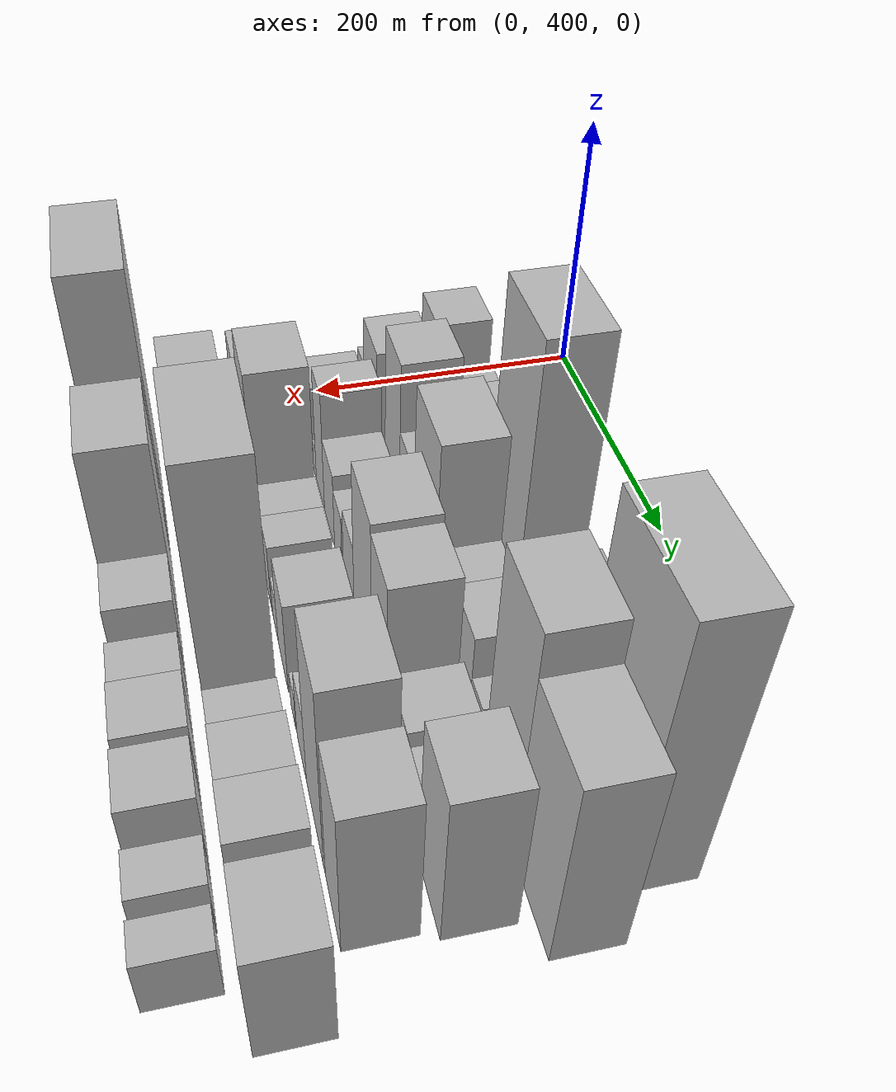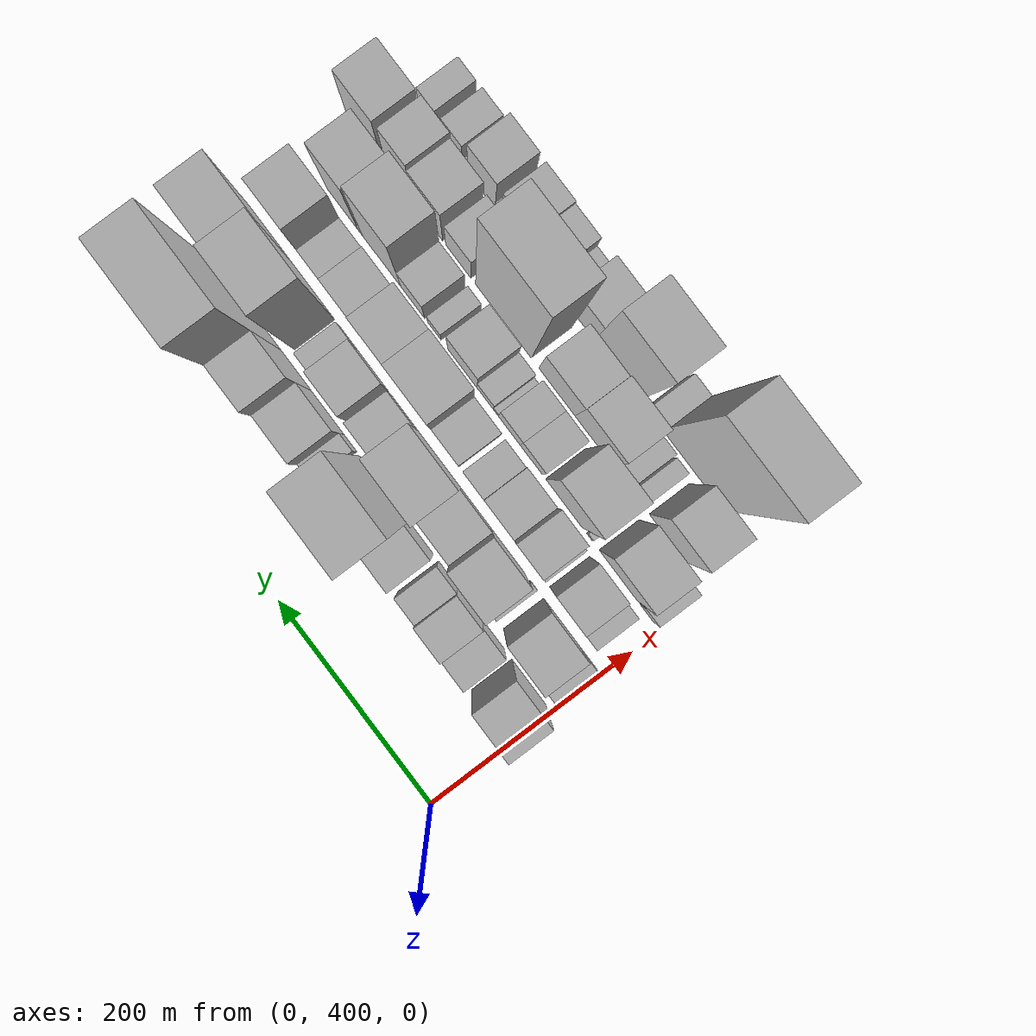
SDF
<sdf version="1.6">
 <world name="default">
  <model name="building_35">
   <static>1</static>
   <pose>100.0000 430.5483 0 0.000000 0.000000 0.000000</pose>
   <link name="link">
    <pose>0 0 42.00 0 0 0</pose>
    <collision name="collision"><geometry><box><size>40.0000 43.8227 84.0000</size></box></geometry></collision>
    <visual name="visual">
     <cast_shadows>0</cast_shadows>
     <geometry><box><size>40.0000 43.8227 84.0000</size></box></geometry>
     <material>
      <script>
       <uri>model://HANNAS_wall/materials/scripts</uri>
       <uri>model://HANNAS_wall/materials/textures</uri>
       <name>vrc/HANNAS_wall</name>
      </script>
     </material>
    </visual>
   </link>
  </model>
  <model name="building_36">
   <static>1</static>
   <pose>100.0000 476.7863 0 0.000000 0.000000 0.000000</pose>
   <link name="link">
    <pose>0 0 24.00 0 0 0</pose>
    <collision name="collision"><geometry><box><size>40.0000 28.6532 48.0000</size></box></geometry></collision>
    <visual name="visual">
     <cast_shadows>0</cast_shadows>
     <geometry><box><size>40.0000 28.6532 48.0000</size></box></geometry>
     <material>
      <script>
       <uri>model://HANNAS_wall/materials/scripts</uri>
       <uri>model://HANNAS_wall/materials/textures</uri>
       <name>vrc/HANNAS_wall</name>
      </script>
     </material>
    </visual>
   </link>
  </model>
  <model name="building_37">
   <static>1</static>
   <pose>100.0000 507.4746 0 0.000000 0.000000 0.000000</pose>
   <link name="link">
    <pose>0 0 30.00 0 0 0</pose>
    <collision name="collision"><geometry><box><size>40.0000 32.7234 60.0000</size></box></geometry></collision>
    <visual name="visual">
     <cast_shadows>0</cast_shadows>
     <geometry><box><size>40.0000 32.7234 60.0000</size></box></geometry>
     <material>
      <script>
       <uri>model://HANNAS_wall/materials/scripts</uri>
       <uri>model://HANNAS_wall/materials/textures</uri>
       <name>vrc/HANNAS_wall</name>
      </script>
     </material>
    </visual>
   </link>
  </model>
  <model name="building_38">
   <static>1</static>
   <pose>100.0000 536.5279 0 0.000000 0.000000 0.000000</pose>
   <link name="link">
    <pose>0 0 24.00 0 0 0</pose>
    <collision name="collision"><geometry><box><size>40.0000 25.3832 48.0000</size></box></geometry></collision>
    <visual name="visual">
     <cast_shadows>0</cast_shadows>
     <geometry><box><size>40.0000 25.3832 48.0000</size></box></geometry>
     <material>
      <script>
       <uri>model://HANNAS_wall/materials/scripts</uri>
       <uri>model://HANNAS_wall/materials/textures</uri>
       <name>vrc/HANNAS_wall</name>
      </script>
     </material>
    </visual>
   </link>
  </model>
  <model name="building_39">
   <static>1</static>
   <pose>100.0000 572.2901 0 0.000000 0.000000 0.000000</pose>
   <link name="link">
    <pose>0 0 31.50 0 0 0</pose>
    <collision name="collision"><geometry><box><size>40.0000 32.1414 63.0000</size></box></geometry></collision>
    <visual name="visual">
     <cast_shadows>0</cast_shadows>
     <geometry><box><size>40.0000 32.1414 63.0000</size></box></geometry>
     <material>
      <script>
       <uri>model://HANNAS_wall/materials/scripts</uri>
       <uri>model://HANNAS_wall/materials/textures</uri>
       <name>vrc/HANNAS_wall</name>
      </script>
     </material>
    </visual>
   </link>
  </model>
  <model name="building_40">
   <static>1</static>
   <pose>100.0000 620.8806 0 0.000000 0.000000 0.000000</pose>
   <link name="link">
    <pose>0 0 106.50 0 0 0</pose>
    <collision name="collision"><geometry><box><size>40.0000 65.0395 213.0000</size></box></geometry></collision>
    <visual name="visual">
     <cast_shadows>0</cast_shadows>
     <geometry><box><size>40.0000 65.0395 213.0000</size></box></geometry>
     <material>
      <script>
       <uri>model://HANNAS_wall/materials/scripts</uri>
       <uri>model://HANNAS_wall/materials/textures</uri>
       <name>vrc/HANNAS_wall</name>
      </script>
     </material>
    </visual>
   </link>
  </model>
  <model name="building_41">
   <static>1</static>
   <pose>100.0000 665.9842 0 0.000000 0.000000 0.000000</pose>
   <link name="link">
    <pose>0 0 16.50 0 0 0</pose>
    <collision name="collision"><geometry><box><size>40.0000 17.1677 33.0000</size></box></geometry></collision>
    <visual name="visual">
     <cast_shadows>0</cast_shadows>
     <geometry><box><size>40.0000 17.1677 33.0000</size></box></geometry>
     <material>
      <script>
       <uri>model://HANNAS_wall/materials/scripts</uri>
       <uri>model://HANNAS_wall/materials/textures</uri>
       <name>vrc/HANNAS_wall</name>
      </script>
     </material>
    </visual>
   </link>
  </model>
  <model name="building_42">
   <static>1</static>
   <pose>100.0000 696.5096 0 0.000000 0.000000 0.000000</pose>
   <link name="link">
    <pose>0 0 37.50 0 0 0</pose>
    <collision name="collision"><geometry><box><size>40.0000 43.8831 75.0000</size></box></geometry></collision>
    <visual name="visual">
     <cast_shadows>0</cast_shadows>
     <geometry><box><size>40.0000 43.8831 75.0000</size></box></geometry>
     <material>
      <script>
       <uri>model://HANNAS_wall/materials/scripts</uri>
       <uri>model://HANNAS_wall/materials/textures</uri>
       <name>vrc/HANNAS_wall</name>
      </script>
     </material>
    </visual>
   </link>
  </model>
  <model name="building_43">
   <static>1</static>
   <pose>100.0000 738.7863 0 0.000000 0.000000 0.000000</pose>
   <link name="link">
    <pose>0 0 57.00 0 0 0</pose>
    <collision name="collision"><geometry><box><size>40.0000 40.6702 114.0000</size></box></geometry></collision>
    <visual name="visual">
     <cast_shadows>0</cast_shadows>
     <geometry><box><size>40.0000 40.6702 114.0000</size></box></geometry>
     <material>
      <script>
       <uri>model://HANNAS_wall/materials/scripts</uri>
       <uri>model://HANNAS_wall/materials/textures</uri>
       <name>vrc/HANNAS_wall</name>
      </script>
     </material>
    </visual>
   </link>
  </model>
  <model name="building_44">
   <static>1</static>
   <pose>100.0000 800.3841 0 0.000000 0.000000 0.000000</pose>
   <link name="link">
    <pose>0 0 105.00 0 0 0</pose>
    <collision name="collision"><geometry><box><size>40.0000 82.5254 210.0000</size></box></geometry></collision>
    <visual name="visual">
     <cast_shadows>0</cast_shadows>
     <geometry><box><size>40.0000 82.5254 210.0000</size></box></geometry>
     <material>
      <script>
       <uri>model://HANNAS_wall/materials/scripts</uri>
       <uri>model://HANNAS_wall/materials/textures</uri>
       <name>vrc/HANNAS_wall</name>
      </script>
     </material>
    </visual>
   </link>
  </model>
  <model name="building_78">
   <static>1</static>
   <pose>149.0000 418.8966 0 0.000000 0.000000 0.000000</pose>
   <link name="link">
    <pose>0 0 21.00 0 0 0</pose>
    <collision name="collision"><geometry><box><size>40.0000 23.4246 42.0000</size></box></geometry></collision>
    <visual name="visual">
     <cast_shadows>0</cast_shadows>
     <geometry><box><size>40.0000 23.4246 42.0000</size></box></geometry>
     <material>
      <script>
       <uri>model://HANNAS_wall/materials/scripts</uri>
       <uri>model://HANNAS_wall/materials/textures</uri>
       <name>vrc/HANNAS_wall</name>
      </script>
     </material>
    </visual>
   </link>
  </model>
  <model name="building_79">
   <static>1</static>
   <pose>149.0000 453.1061 0 0.000000 0.000000 0.000000</pose>
   <link name="link">
    <pose>0 0 42.00 0 0 0</pose>
    <collision name="collision"><geometry><box><size>40.0000 44.9944 84.0000</size></box></geometry></collision>
    <visual name="visual">
     <cast_shadows>0</cast_shadows>
     <geometry><box><size>40.0000 44.9944 84.0000</size></box></geometry>
     <material>
      <script>
       <uri>model://HANNAS_wall/materials/scripts</uri>
       <uri>model://HANNAS_wall/materials/textures</uri>
       <name>vrc/HANNAS_wall</name>
      </script>
     </material>
    </visual>
   </link>
  </model>
  <model name="building_80">
   <static>1</static>
   <pose>149.0000 489.3910 0 0.000000 0.000000 0.000000</pose>
   <link name="link">
    <pose>0 0 9.00 0 0 0</pose>
    <collision name="collision"><geometry><box><size>40.0000 7.5755 18.0000</size></box></geometry></collision>
    <visual name="visual">
     <cast_shadows>0</cast_shadows>
     <geometry><box><size>40.0000 7.5755 18.0000</size></box></geometry>
     <material>
      <script>
       <uri>model://HANNAS_wall/materials/scripts</uri>
       <uri>model://HANNAS_wall/materials/textures</uri>
       <name>vrc/HANNAS_wall</name>
      </script>
     </material>
    </visual>
   </link>
  </model>
  <model name="building_81">
   <static>1</static>
   <pose>149.0000 523.8926 0 0.000000 0.000000 0.000000</pose>
   <link name="link">
    <pose>0 0 63.00 0 0 0</pose>
    <collision name="collision"><geometry><box><size>40.0000 43.4276 126.0000</size></box></geometry></collision>
    <visual name="visual">
     <cast_shadows>0</cast_shadows>
     <geometry><box><size>40.0000 43.4276 126.0000</size></box></geometry>
     <material>
      <script>
       <uri>model://HANNAS_wall/materials/scripts</uri>
       <uri>model://HANNAS_wall/materials/textures</uri>
       <name>vrc/HANNAS_wall</name>
      </script>
     </material>
    </visual>
   </link>
  </model>
  <model name="building_82">
   <static>1</static>
   <pose>149.0000 565.2602 0 0.000000 0.000000 0.000000</pose>
   <link name="link">
    <pose>0 0 36.00 0 0 0</pose>
    <collision name="collision"><geometry><box><size>40.0000 39.3076 72.0000</size></box></geometry></collision>
    <visual name="visual">
     <cast_shadows>0</cast_shadows>
     <geometry><box><size>40.0000 39.3076 72.0000</size></box></geometry>
     <material>
      <script>
       <uri>model://HANNAS_wall/materials/scripts</uri>
       <uri>model://HANNAS_wall/materials/textures</uri>
       <name>vrc/HANNAS_wall</name>
      </script>
     </material>
    </visual>
   </link>
  </model>
  <model name="building_83">
   <static>1</static>
   <pose>149.0000 613.0986 0 0.000000 0.000000 0.000000</pose>
   <link name="link">
    <pose>0 0 70.50 0 0 0</pose>
    <collision name="collision"><geometry><box><size>40.0000 56.3691 141.0000</size></box></geometry></collision>
    <visual name="visual">
     <cast_shadows>0</cast_shadows>
     <geometry><box><size>40.0000 56.3691 141.0000</size></box></geometry>
     <material>
      <script>
       <uri>model://HANNAS_wall/materials/scripts</uri>
       <uri>model://HANNAS_wall/materials/textures</uri>
       <name>vrc/HANNAS_wall</name>
      </script>
     </material>
    </visual>
   </link>
  </model>
  <model name="building_84">
   <static>1</static>
   <pose>149.0000 658.5137 0 0.000000 0.000000 0.000000</pose>
   <link name="link">
    <pose>0 0 30.00 0 0 0</pose>
    <collision name="collision"><geometry><box><size>40.0000 34.4611 60.0000</size></box></geometry></collision>
    <visual name="visual">
     <cast_shadows>0</cast_shadows>
     <geometry><box><size>40.0000 34.4611 60.0000</size></box></geometry>
     <material>
      <script>
       <uri>model://HANNAS_wall/materials/scripts</uri>
       <uri>model://HANNAS_wall/materials/textures</uri>
       <name>vrc/HANNAS_wall</name>
      </script>
     </material>
    </visual>
   </link>
  </model>
  <model name="building_85">
   <static>1</static>
   <pose>149.0000 701.3067 0 0.000000 0.000000 0.000000</pose>
   <link name="link">
    <pose>0 0 36.00 0 0 0</pose>
    <collision name="collision"><geometry><box><size>40.0000 41.1250 72.0000</size></box></geometry></collision>
    <visual name="visual">
     <cast_shadows>0</cast_shadows>
     <geometry><box><size>40.0000 41.1250 72.0000</size></box></geometry>
     <material>
      <script>
       <uri>model://HANNAS_wall/materials/scripts</uri>
       <uri>model://HANNAS_wall/materials/textures</uri>
       <name>vrc/HANNAS_wall</name>
      </script>
     </material>
    </visual>
   </link>
  </model>
  <model name="building_86">
   <static>1</static>
   <pose>149.0000 732.7584 0 0.000000 0.000000 0.000000</pose>
   <link name="link">
    <pose>0 0 19.50 0 0 0</pose>
    <collision name="collision"><geometry><box><size>40.0000 21.7783 39.0000</size></box></geometry></collision>
    <visual name="visual">
     <cast_shadows>0</cast_shadows>
     <geometry><box><size>40.0000 21.7783 39.0000</size></box></geometry>
     <material>
      <script>
       <uri>model://HANNAS_wall/materials/scripts</uri>
       <uri>model://HANNAS_wall/materials/textures</uri>
       <name>vrc/HANNAS_wall</name>
      </script>
     </material>
    </visual>
   </link>
  </model>
  <model name="building_87">
   <static>1</static>
   <pose>149.0000 780.5830 0 0.000000 0.000000 0.000000</pose>
   <link name="link">
    <pose>0 0 88.50 0 0 0</pose>
    <collision name="collision"><geometry><box><size>40.0000 55.8710 177.0000</size></box></geometry></collision>
    <visual name="visual">
     <cast_shadows>0</cast_shadows>
     <geometry><box><size>40.0000 55.8710 177.0000</size></box></geometry>
     <material>
      <script>
       <uri>model://HANNAS_wall/materials/scripts</uri>
       <uri>model://HANNAS_wall/materials/textures</uri>
       <name>vrc/HANNAS_wall</name>
      </script>
     </material>
    </visual>
   </link>
  </model>
  <model name="building_88">
   <static>1</static>
   <pose>149.0000 837.6200 0 0.000000 0.000000 0.000000</pose>
   <link name="link">
    <pose>0 0 73.50 0 0 0</pose>
    <collision name="collision"><geometry><box><size>40.0000 58.2028 147.0000</size></box></geometry></collision>
    <visual name="visual">
     <cast_shadows>0</cast_shadows>
     <geometry><box><size>40.0000 58.2028 147.0000</size></box></geometry>
     <material>
      <script>
       <uri>model://HANNAS_wall/materials/scripts</uri>
       <uri>model://HANNAS_wall/materials/textures</uri>
       <name>vrc/HANNAS_wall</name>
      </script>
     </material>
    </visual>
   </link>
  </model>
  <model name="building_122">
   <static>1</static>
   <pose>198.0000 434.0410 0 0.000000 0.000000 0.000000</pose>
   <link name="link">
    <pose>0 0 18.00 0 0 0</pose>
    <collision name="collision"><geometry><box><size>40.0000 18.9634 36.0000</size></box></geometry></collision>
    <visual name="visual">
     <cast_shadows>0</cast_shadows>
     <geometry><box><size>40.0000 18.9634 36.0000</size></box></geometry>
     <material>
      <script>
       <uri>model://HANNAS_wall/materials/scripts</uri>
       <uri>model://HANNAS_wall/materials/textures</uri>
       <name>vrc/HANNAS_wall</name>
      </script>
     </material>
    </visual>
   </link>
  </model>
  <model name="building_123">
   <static>1</static>
   <pose>198.0000 461.7664 0 0.000000 0.000000 0.000000</pose>
   <link name="link">
    <pose>0 0 33.00 0 0 0</pose>
    <collision name="collision"><geometry><box><size>40.0000 36.4874 66.0000</size></box></geometry></collision>
    <visual name="visual">
     <cast_shadows>0</cast_shadows>
     <geometry><box><size>40.0000 36.4874 66.0000</size></box></geometry>
     <material>
      <script>
       <uri>model://HANNAS_wall/materials/scripts</uri>
       <uri>model://HANNAS_wall/materials/textures</uri>
       <name>vrc/HANNAS_wall</name>
      </script>
     </material>
    </visual>
   </link>
  </model>
  <model name="building_124">
   <static>1</static>
   <pose>198.0000 493.6370 0 0.000000 0.000000 0.000000</pose>
   <link name="link">
    <pose>0 0 13.50 0 0 0</pose>
    <collision name="collision"><geometry><box><size>40.0000 11.2537 27.0000</size></box></geometry></collision>
    <visual name="visual">
     <cast_shadows>0</cast_shadows>
     <geometry><box><size>40.0000 11.2537 27.0000</size></box></geometry>
     <material>
      <script>
       <uri>model://HANNAS_wall/materials/scripts</uri>
       <uri>model://HANNAS_wall/materials/textures</uri>
       <name>vrc/HANNAS_wall</name>
      </script>
     </material>
    </visual>
   </link>
  </model>
  <model name="building_125">
   <static>1</static>
   <pose>198.0000 515.0163 0 0.000000 0.000000 0.000000</pose>
   <link name="link">
    <pose>0 0 49.50 0 0 0</pose>
    <collision name="collision"><geometry><box><size>40.0000 31.5050 99.0000</size></box></geometry></collision>
    <visual name="visual">
     <cast_shadows>0</cast_shadows>
     <geometry><box><size>40.0000 31.5050 99.0000</size></box></geometry>
     <material>
      <script>
       <uri>model://HANNAS_wall/materials/scripts</uri>
       <uri>model://HANNAS_wall/materials/textures</uri>
       <name>vrc/HANNAS_wall</name>
      </script>
     </material>
    </visual>
   </link>
  </model>
  <model name="building_126">
   <static>1</static>
   <pose>198.0000 549.2763 0 0.000000 0.000000 0.000000</pose>
   <link name="link">
    <pose>0 0 31.50 0 0 0</pose>
    <collision name="collision"><geometry><box><size>40.0000 37.0149 63.0000</size></box></geometry></collision>
    <visual name="visual">
     <cast_shadows>0</cast_shadows>
     <geometry><box><size>40.0000 37.0149 63.0000</size></box></geometry>
     <material>
      <script>
       <uri>model://HANNAS_wall/materials/scripts</uri>
       <uri>model://HANNAS_wall/materials/textures</uri>
       <name>vrc/HANNAS_wall</name>
      </script>
     </material>
    </visual>
   </link>
  </model>
  <model name="building_127">
   <static>1</static>
   <pose>198.0000 580.9448 0 0.000000 0.000000 0.000000</pose>
   <link name="link">
    <pose>0 0 25.50 0 0 0</pose>
    <collision name="collision"><geometry><box><size>40.0000 26.3220 51.0000</size></box></geometry></collision>
    <visual name="visual">
     <cast_shadows>0</cast_shadows>
     <geometry><box><size>40.0000 26.3220 51.0000</size></box></geometry>
     <material>
      <script>
       <uri>model://HANNAS_wall/materials/scripts</uri>
       <uri>model://HANNAS_wall/materials/textures</uri>
       <name>vrc/HANNAS_wall</name>
      </script>
     </material>
    </visual>
   </link>
  </model>
  <model name="building_128">
   <static>1</static>
   <pose>198.0000 616.0110 0 0.000000 0.000000 0.000000</pose>
   <link name="link">
    <pose>0 0 31.50 0 0 0</pose>
    <collision name="collision"><geometry><box><size>40.0000 33.8106 63.0000</size></box></geometry></collision>
    <visual name="visual">
     <cast_shadows>0</cast_shadows>
     <geometry><box><size>40.0000 33.8106 63.0000</size></box></geometry>
     <material>
      <script>
       <uri>model://HANNAS_wall/materials/scripts</uri>
       <uri>model://HANNAS_wall/materials/textures</uri>
       <name>vrc/HANNAS_wall</name>
      </script>
     </material>
    </visual>
   </link>
  </model>
  <model name="building_129">
   <static>1</static>
   <pose>198.0000 658.3761 0 0.000000 0.000000 0.000000</pose>
   <link name="link">
    <pose>0 0 66.00 0 0 0</pose>
    <collision name="collision"><geometry><box><size>40.0000 50.9194 132.0000</size></box></geometry></collision>
    <visual name="visual">
     <cast_shadows>0</cast_shadows>
     <geometry><box><size>40.0000 50.9194 132.0000</size></box></geometry>
     <material>
      <script>
       <uri>model://HANNAS_wall/materials/scripts</uri>
       <uri>model://HANNAS_wall/materials/textures</uri>
       <name>vrc/HANNAS_wall</name>
      </script>
     </material>
    </visual>
   </link>
  </model>
  <model name="building_130">
   <static>1</static>
   <pose>198.0000 704.2432 0 0.000000 0.000000 0.000000</pose>
   <link name="link">
    <pose>0 0 63.00 0 0 0</pose>
    <collision name="collision"><geometry><box><size>40.0000 40.8148 126.0000</size></box></geometry></collision>
    <visual name="visual">
     <cast_shadows>0</cast_shadows>
     <geometry><box><size>40.0000 40.8148 126.0000</size></box></geometry>
     <material>
      <script>
       <uri>model://HANNAS_wall/materials/scripts</uri>
       <uri>model://HANNAS_wall/materials/textures</uri>
       <name>vrc/HANNAS_wall</name>
      </script>
     </material>
    </visual>
   </link>
  </model>
  <model name="building_131">
   <static>1</static>
   <pose>198.0000 751.6642 0 0.000000 0.000000 0.000000</pose>
   <link name="link">
    <pose>0 0 34.50 0 0 0</pose>
    <collision name="collision"><geometry><box><size>40.0000 38.0272 69.0000</size></box></geometry></collision>
    <visual name="visual">
     <cast_shadows>0</cast_shadows>
     <geometry><box><size>40.0000 38.0272 69.0000</size></box></geometry>
     <material>
      <script>
       <uri>model://HANNAS_wall/materials/scripts</uri>
       <uri>model://HANNAS_wall/materials/textures</uri>
       <name>vrc/HANNAS_wall</name>
      </script>
     </material>
    </visual>
   </link>
  </model>
  <model name="building_132">
   <static>1</static>
   <pose>198.0000 785.7632 0 0.000000 0.000000 0.000000</pose>
   <link name="link">
    <pose>0 0 28.50 0 0 0</pose>
    <collision name="collision"><geometry><box><size>40.0000 30.1709 57.0000</size></box></geometry></collision>
    <visual name="visual">
     <cast_shadows>0</cast_shadows>
     <geometry><box><size>40.0000 30.1709 57.0000</size></box></geometry>
     <material>
      <script>
       <uri>model://HANNAS_wall/materials/scripts</uri>
       <uri>model://HANNAS_wall/materials/textures</uri>
       <name>vrc/HANNAS_wall</name>
      </script>
     </material>
    </visual>
   </link>
  </model>
  <model name="building_133">
   <static>1</static>
   <pose>198.0000 823.1013 0 0.000000 0.000000 0.000000</pose>
   <link name="link">
    <pose>0 0 60.00 0 0 0</pose>
    <collision name="collision"><geometry><box><size>40.0000 44.5053 120.0000</size></box></geometry></collision>
    <visual name="visual">
     <cast_shadows>0</cast_shadows>
     <geometry><box><size>40.0000 44.5053 120.0000</size></box></geometry>
     <material>
      <script>
       <uri>model://HANNAS_wall/materials/scripts</uri>
       <uri>model://HANNAS_wall/materials/textures</uri>
       <name>vrc/HANNAS_wall</name>
      </script>
     </material>
    </visual>
   </link>
  </model>
  <model name="building_171">
   <static>1</static>
   <pose>247.0000 418.0295 0 0.000000 0.000000 0.000000</pose>
   <link name="link">
    <pose>0 0 16.50 0 0 0</pose>
    <collision name="collision"><geometry><box><size>40.0000 17.3666 33.0000</size></box></geometry></collision>
    <visual name="visual">
     <cast_shadows>0</cast_shadows>
     <geometry><box><size>40.0000 17.3666 33.0000</size></box></geometry>
     <material>
      <script>
       <uri>model://HANNAS_wall/materials/scripts</uri>
       <uri>model://HANNAS_wall/materials/textures</uri>
       <name>vrc/HANNAS_wall</name>
      </script>
     </material>
    </visual>
   </link>
  </model>
  <model name="building_172">
   <static>1</static>
   <pose>247.0000 454.6706 0 0.000000 0.000000 0.000000</pose>
   <link name="link">
    <pose>0 0 43.50 0 0 0</pose>
    <collision name="collision"><geometry><box><size>40.0000 49.9155 87.0000</size></box></geometry></collision>
    <visual name="visual">
     <cast_shadows>0</cast_shadows>
     <geometry><box><size>40.0000 49.9155 87.0000</size></box></geometry>
     <material>
      <script>
       <uri>model://HANNAS_wall/materials/scripts</uri>
       <uri>model://HANNAS_wall/materials/textures</uri>
       <name>vrc/HANNAS_wall</name>
      </script>
     </material>
    </visual>
   </link>
  </model>
  <model name="building_173">
   <static>1</static>
   <pose>247.0000 493.0077 0 0.000000 0.000000 0.000000</pose>
   <link name="link">
    <pose>0 0 7.50 0 0 0</pose>
    <collision name="collision"><geometry><box><size>40.0000 6.7589 15.0000</size></box></geometry></collision>
    <visual name="visual">
     <cast_shadows>0</cast_shadows>
     <geometry><box><size>40.0000 6.7589 15.0000</size></box></geometry>
     <material>
      <script>
       <uri>model://HANNAS_wall/materials/scripts</uri>
       <uri>model://HANNAS_wall/materials/textures</uri>
       <name>vrc/HANNAS_wall</name>
      </script>
     </material>
    </visual>
   </link>
  </model>
  <model name="building_174">
   <static>1</static>
   <pose>247.0000 525.7891 0 0.000000 0.000000 0.000000</pose>
   <link name="link">
    <pose>0 0 69.00 0 0 0</pose>
    <collision name="collision"><geometry><box><size>40.0000 48.8038 138.0000</size></box></geometry></collision>
    <visual name="visual">
     <cast_shadows>0</cast_shadows>
     <geometry><box><size>40.0000 48.8038 138.0000</size></box></geometry>
     <material>
      <script>
       <uri>model://HANNAS_wall/materials/scripts</uri>
       <uri>model://HANNAS_wall/materials/textures</uri>
       <name>vrc/HANNAS_wall</name>
      </script>
     </material>
    </visual>
   </link>
  </model>
  <model name="building_175">
   <static>1</static>
   <pose>247.0000 569.5312 0 0.000000 0.000000 0.000000</pose>
   <link name="link">
    <pose>0 0 27.00 0 0 0</pose>
    <collision name="collision"><geometry><box><size>40.0000 28.6806 54.0000</size></box></geometry></collision>
    <visual name="visual">
     <cast_shadows>0</cast_shadows>
     <geometry><box><size>40.0000 28.6806 54.0000</size></box></geometry>
     <material>
      <script>
       <uri>model://HANNAS_wall/materials/scripts</uri>
       <uri>model://HANNAS_wall/materials/textures</uri>
       <name>vrc/HANNAS_wall</name>
      </script>
     </material>
    </visual>
   </link>
  </model>
  <model name="building_176">
   <static>1</static>
   <pose>247.0000 598.1609 0 0.000000 0.000000 0.000000</pose>
   <link name="link">
    <pose>0 0 27.00 0 0 0</pose>
    <collision name="collision"><geometry><box><size>40.0000 28.5788 54.0000</size></box></geometry></collision>
    <visual name="visual">
     <cast_shadows>0</cast_shadows>
     <geometry><box><size>40.0000 28.5788 54.0000</size></box></geometry>
     <material>
      <script>
       <uri>model://HANNAS_wall/materials/scripts</uri>
       <uri>model://HANNAS_wall/materials/textures</uri>
       <name>vrc/HANNAS_wall</name>
      </script>
     </material>
    </visual>
   </link>
  </model>
  <model name="building_177">
   <static>1</static>
   <pose>247.0000 615.9088 0 0.000000 0.000000 0.000000</pose>
   <link name="link">
    <pose>0 0 7.50 0 0 0</pose>
    <collision name="collision"><geometry><box><size>40.0000 6.9170 15.0000</size></box></geometry></collision>
    <visual name="visual">
     <cast_shadows>0</cast_shadows>
     <geometry><box><size>40.0000 6.9170 15.0000</size></box></geometry>
     <material>
      <script>
       <uri>model://HANNAS_wall/materials/scripts</uri>
       <uri>model://HANNAS_wall/materials/textures</uri>
       <name>vrc/HANNAS_wall</name>
      </script>
     </material>
    </visual>
   </link>
  </model>
  <model name="building_178">
   <static>1</static>
   <pose>247.0000 630.1645 0 0.000000 0.000000 0.000000</pose>
   <link name="link">
    <pose>0 0 18.00 0 0 0</pose>
    <collision name="collision"><geometry><box><size>40.0000 21.5945 36.0000</size></box></geometry></collision>
    <visual name="visual">
     <cast_shadows>0</cast_shadows>
     <geometry><box><size>40.0000 21.5945 36.0000</size></box></geometry>
     <material>
      <script>
       <uri>model://HANNAS_wall/materials/scripts</uri>
       <uri>model://HANNAS_wall/materials/textures</uri>
       <name>vrc/HANNAS_wall</name>
      </script>
     </material>
    </visual>
   </link>
  </model>
  <model name="building_179">
   <static>1</static>
   <pose>247.0000 660.2717 0 0.000000 0.000000 0.000000</pose>
   <link name="link">
    <pose>0 0 37.50 0 0 0</pose>
    <collision name="collision"><geometry><box><size>40.0000 38.6201 75.0000</size></box></geometry></collision>
    <visual name="visual">
     <cast_shadows>0</cast_shadows>
     <geometry><box><size>40.0000 38.6201 75.0000</size></box></geometry>
     <material>
      <script>
       <uri>model://HANNAS_wall/materials/scripts</uri>
       <uri>model://HANNAS_wall/materials/textures</uri>
       <name>vrc/HANNAS_wall</name>
      </script>
     </material>
    </visual>
   </link>
  </model>
  <model name="building_180">
   <static>1</static>
   <pose>247.0000 697.4642 0 0.000000 0.000000 0.000000</pose>
   <link name="link">
    <pose>0 0 15.00 0 0 0</pose>
    <collision name="collision"><geometry><box><size>40.0000 17.7649 30.0000</size></box></geometry></collision>
    <visual name="visual">
     <cast_shadows>0</cast_shadows>
     <geometry><box><size>40.0000 17.7649 30.0000</size></box></geometry>
     <material>
      <script>
       <uri>model://HANNAS_wall/materials/scripts</uri>
       <uri>model://HANNAS_wall/materials/textures</uri>
       <name>vrc/HANNAS_wall</name>
      </script>
     </material>
    </visual>
   </link>
  </model>
  <model name="building_181">
   <static>1</static>
   <pose>247.0000 726.1737 0 0.000000 0.000000 0.000000</pose>
   <link name="link">
    <pose>0 0 28.50 0 0 0</pose>
    <collision name="collision"><geometry><box><size>40.0000 31.6541 57.0000</size></box></geometry></collision>
    <visual name="visual">
     <cast_shadows>0</cast_shadows>
     <geometry><box><size>40.0000 31.6541 57.0000</size></box></geometry>
     <material>
      <script>
       <uri>model://HANNAS_wall/materials/scripts</uri>
       <uri>model://HANNAS_wall/materials/textures</uri>
       <name>vrc/HANNAS_wall</name>
      </script>
     </material>
    </visual>
   </link>
  </model>
  <model name="building_182">
   <static>1</static>
   <pose>247.0000 767.4680 0 0.000000 0.000000 0.000000</pose>
   <link name="link">
    <pose>0 0 72.00 0 0 0</pose>
    <collision name="collision"><geometry><box><size>40.0000 50.9344 144.0000</size></box></geometry></collision>
    <visual name="visual">
     <cast_shadows>0</cast_shadows>
     <geometry><box><size>40.0000 50.9344 144.0000</size></box></geometry>
     <material>
      <script>
       <uri>model://HANNAS_wall/materials/scripts</uri>
       <uri>model://HANNAS_wall/materials/textures</uri>
       <name>vrc/HANNAS_wall</name>
      </script>
     </material>
    </visual>
   </link>
  </model>
  <model name="building_183">
   <static>1</static>
   <pose>247.0000 796.0054 0 0.000000 0.000000 0.000000</pose>
   <link name="link">
    <pose>0 0 7.50 0 0 0</pose>
    <collision name="collision"><geometry><box><size>40.0000 6.1405 15.0000</size></box></geometry></collision>
    <visual name="visual">
     <cast_shadows>0</cast_shadows>
     <geometry><box><size>40.0000 6.1405 15.0000</size></box></geometry>
     <material>
      <script>
       <uri>model://HANNAS_wall/materials/scripts</uri>
       <uri>model://HANNAS_wall/materials/textures</uri>
       <name>vrc/HANNAS_wall</name>
      </script>
     </material>
    </visual>
   </link>
  </model>
  <model name="building_184">
   <static>1</static>
   <pose>247.0000 819.7934 0 0.000000 0.000000 0.000000</pose>
   <link name="link">
    <pose>0 0 58.50 0 0 0</pose>
    <collision name="collision"><geometry><box><size>40.0000 41.4354 117.0000</size></box></geometry></collision>
    <visual name="visual">
     <cast_shadows>0</cast_shadows>
     <geometry><box><size>40.0000 41.4354 117.0000</size></box></geometry>
     <material>
      <script>
       <uri>model://HANNAS_wall/materials/scripts</uri>
       <uri>model://HANNAS_wall/materials/textures</uri>
       <name>vrc/HANNAS_wall</name>
      </script>
     </material>
    </visual>
   </link>
  </model>
  <model name="building_222">
   <static>1</static>
   <pose>296.0000 454.6803 0 0.000000 0.000000 0.000000</pose>
   <link name="link">
    <pose>0 0 45.00 0 0 0</pose>
    <collision name="collision"><geometry><box><size>40.0000 47.3973 90.0000</size></box></geometry></collision>
    <visual name="visual">
     <cast_shadows>0</cast_shadows>
     <geometry><box><size>40.0000 47.3973 90.0000</size></box></geometry>
     <material>
      <script>
       <uri>model://HANNAS_wall/materials/scripts</uri>
       <uri>model://HANNAS_wall/materials/textures</uri>
       <name>vrc/HANNAS_wall</name>
      </script>
     </material>
    </visual>
   </link>
  </model>
  <model name="building_223">
   <static>1</static>
   <pose>296.0000 496.0826 0 0.000000 0.000000 0.000000</pose>
   <link name="link">
    <pose>0 0 15.00 0 0 0</pose>
    <collision name="collision"><geometry><box><size>40.0000 15.4074 30.0000</size></box></geometry></collision>
    <visual name="visual">
     <cast_shadows>0</cast_shadows>
     <geometry><box><size>40.0000 15.4074 30.0000</size></box></geometry>
     <material>
      <script>
       <uri>model://HANNAS_wall/materials/scripts</uri>
       <uri>model://HANNAS_wall/materials/textures</uri>
       <name>vrc/HANNAS_wall</name>
      </script>
     </material>
    </visual>
   </link>
  </model>
  <model name="building_224">
   <static>1</static>
   <pose>296.0000 517.1504 0 0.000000 0.000000 0.000000</pose>
   <link name="link">
    <pose>0 0 19.50 0 0 0</pose>
    <collision name="collision"><geometry><box><size>40.0000 20.7282 39.0000</size></box></geometry></collision>
    <visual name="visual">
     <cast_shadows>0</cast_shadows>
     <geometry><box><size>40.0000 20.7282 39.0000</size></box></geometry>
     <material>
      <script>
       <uri>model://HANNAS_wall/materials/scripts</uri>
       <uri>model://HANNAS_wall/materials/textures</uri>
       <name>vrc/HANNAS_wall</name>
      </script>
     </material>
    </visual>
   </link>
  </model>
  <model name="building_225">
   <static>1</static>
   <pose>296.0000 551.9084 0 0.000000 0.000000 0.000000</pose>
   <link name="link">
    <pose>0 0 43.50 0 0 0</pose>
    <collision name="collision"><geometry><box><size>40.0000 48.7878 87.0000</size></box></geometry></collision>
    <visual name="visual">
     <cast_shadows>0</cast_shadows>
     <geometry><box><size>40.0000 48.7878 87.0000</size></box></geometry>
     <material>
      <script>
       <uri>model://HANNAS_wall/materials/scripts</uri>
       <uri>model://HANNAS_wall/materials/textures</uri>
       <name>vrc/HANNAS_wall</name>
      </script>
     </material>
    </visual>
   </link>
  </model>
  <model name="building_226">
   <static>1</static>
   <pose>296.0000 600.0971 0 0.000000 0.000000 0.000000</pose>
   <link name="link">
    <pose>0 0 40.50 0 0 0</pose>
    <collision name="collision"><geometry><box><size>40.0000 47.5896 81.0000</size></box></geometry></collision>
    <visual name="visual">
     <cast_shadows>0</cast_shadows>
     <geometry><box><size>40.0000 47.5896 81.0000</size></box></geometry>
     <material>
      <script>
       <uri>model://HANNAS_wall/materials/scripts</uri>
       <uri>model://HANNAS_wall/materials/textures</uri>
       <name>vrc/HANNAS_wall</name>
      </script>
     </material>
    </visual>
   </link>
  </model>
  <model name="building_227">
   <static>1</static>
   <pose>296.0000 671.0054 0 0.000000 0.000000 0.000000</pose>
   <link name="link">
    <pose>0 0 106.50 0 0 0</pose>
    <collision name="collision"><geometry><box><size>40.0000 74.2270 213.0000</size></box></geometry></collision>
    <visual name="visual">
     <cast_shadows>0</cast_shadows>
     <geometry><box><size>40.0000 74.2270 213.0000</size></box></geometry>
     <material>
      <script>
       <uri>model://HANNAS_wall/materials/scripts</uri>
       <uri>model://HANNAS_wall/materials/textures</uri>
       <name>vrc/HANNAS_wall</name>
      </script>
     </material>
    </visual>
   </link>
  </model>
  <model name="building_228">
   <static>1</static>
   <pose>296.0000 730.9924 0 0.000000 0.000000 0.000000</pose>
   <link name="link">
    <pose>0 0 30.00 0 0 0</pose>
    <collision name="collision"><geometry><box><size>40.0000 33.7469 60.0000</size></box></geometry></collision>
    <visual name="visual">
     <cast_shadows>0</cast_shadows>
     <geometry><box><size>40.0000 33.7469 60.0000</size></box></geometry>
     <material>
      <script>
       <uri>model://HANNAS_wall/materials/scripts</uri>
       <uri>model://HANNAS_wall/materials/textures</uri>
       <name>vrc/HANNAS_wall</name>
      </script>
     </material>
    </visual>
   </link>
  </model>
  <model name="building_229">
   <static>1</static>
   <pose>296.0000 772.2329 0 0.000000 0.000000 0.000000</pose>
   <link name="link">
    <pose>0 0 40.50 0 0 0</pose>
    <collision name="collision"><geometry><box><size>40.0000 40.7341 81.0000</size></box></geometry></collision>
    <visual name="visual">
     <cast_shadows>0</cast_shadows>
     <geometry><box><size>40.0000 40.7341 81.0000</size></box></geometry>
     <material>
      <script>
       <uri>model://HANNAS_wall/materials/scripts</uri>
       <uri>model://HANNAS_wall/materials/textures</uri>
       <name>vrc/HANNAS_wall</name>
      </script>
     </material>
    </visual>
   </link>
  </model>
  <model name="building_230">
   <static>1</static>
   <pose>296.0000 809.5626 0 0.000000 0.000000 0.000000</pose>
   <link name="link">
    <pose>0 0 46.50 0 0 0</pose>
    <collision name="collision"><geometry><box><size>40.0000 33.9253 93.0000</size></box></geometry></collision>
    <visual name="visual">
     <cast_shadows>0</cast_shadows>
     <geometry><box><size>40.0000 33.9253 93.0000</size></box></geometry>
     <material>
      <script>
       <uri>model://HANNAS_wall/materials/scripts</uri>
       <uri>model://HANNAS_wall/materials/textures</uri>
       <name>vrc/HANNAS_wall</name>
      </script>
     </material>
    </visual>
   </link>
  </model>
  <model name="building_231">
   <static>1</static>
   <pose>296.0000 857.1317 0 0.000000 0.000000 0.000000</pose>
   <link name="link">
    <pose>0 0 45.00 0 0 0</pose>
    <collision name="collision"><geometry><box><size>40.0000 47.2130 90.0000</size></box></geometry></collision>
    <visual name="visual">
     <cast_shadows>0</cast_shadows>
     <geometry><box><size>40.0000 47.2130 90.0000</size></box></geometry>
     <material>
      <script>
       <uri>model://HANNAS_wall/materials/scripts</uri>
       <uri>model://HANNAS_wall/materials/textures</uri>
       <name>vrc/HANNAS_wall</name>
      </script>
     </material>
    </visual>
   </link>
  </model>
  <model name="building_265">
   <static>1</static>
   <pose>345.0000 485.5488 0 0.000000 0.000000 0.000000</pose>
   <link name="link">
    <pose>0 0 102.00 0 0 0</pose>
    <collision name="collision"><geometry><box><size>40.0000 80.8184 204.0000</size></box></geometry></collision>
    <visual name="visual">
     <cast_shadows>0</cast_shadows>
     <geometry><box><size>40.0000 80.8184 204.0000</size></box></geometry>
     <material>
      <script>
       <uri>model://HANNAS_wall/materials/scripts</uri>
       <uri>model://HANNAS_wall/materials/textures</uri>
       <name>vrc/HANNAS_wall</name>
      </script>
     </material>
    </visual>
   </link>
  </model>
  <model name="building_266">
   <static>1</static>
   <pose>345.0000 536.6796 0 0.000000 0.000000 0.000000</pose>
   <link name="link">
    <pose>0 0 18.00 0 0 0</pose>
    <collision name="collision"><geometry><box><size>40.0000 21.4432 36.0000</size></box></geometry></collision>
    <visual name="visual">
     <cast_shadows>0</cast_shadows>
     <geometry><box><size>40.0000 21.4432 36.0000</size></box></geometry>
     <material>
      <script>
       <uri>model://HANNAS_wall/materials/scripts</uri>
       <uri>model://HANNAS_wall/materials/textures</uri>
       <name>vrc/HANNAS_wall</name>
      </script>
     </material>
    </visual>
   </link>
  </model>
  <model name="building_267">
   <static>1</static>
   <pose>345.0000 585.2431 0 0.000000 0.000000 0.000000</pose>
   <link name="link">
    <pose>0 0 75.00 0 0 0</pose>
    <collision name="collision"><geometry><box><size>40.0000 59.6837 150.0000</size></box></geometry></collision>
    <visual name="visual">
     <cast_shadows>0</cast_shadows>
     <geometry><box><size>40.0000 59.6837 150.0000</size></box></geometry>
     <material>
      <script>
       <uri>model://HANNAS_wall/materials/scripts</uri>
       <uri>model://HANNAS_wall/materials/textures</uri>
       <name>vrc/HANNAS_wall</name>
      </script>
     </material>
    </visual>
   </link>
  </model>
  <model name="building_268">
   <static>1</static>
   <pose>345.0000 634.0201 0 0.000000 0.000000 0.000000</pose>
   <link name="link">
    <pose>0 0 33.00 0 0 0</pose>
    <collision name="collision"><geometry><box><size>40.0000 37.8703 66.0000</size></box></geometry></collision>
    <visual name="visual">
     <cast_shadows>0</cast_shadows>
     <geometry><box><size>40.0000 37.8703 66.0000</size></box></geometry>
     <material>
      <script>
       <uri>model://HANNAS_wall/materials/scripts</uri>
       <uri>model://HANNAS_wall/materials/textures</uri>
       <name>vrc/HANNAS_wall</name>
      </script>
     </material>
    </visual>
   </link>
  </model>
  <model name="building_269">
   <static>1</static>
   <pose>345.0000 661.8292 0 0.000000 0.000000 0.000000</pose>
   <link name="link">
    <pose>0 0 16.50 0 0 0</pose>
    <collision name="collision"><geometry><box><size>40.0000 17.7479 33.0000</size></box></geometry></collision>
    <visual name="visual">
     <cast_shadows>0</cast_shadows>
     <geometry><box><size>40.0000 17.7479 33.0000</size></box></geometry>
     <material>
      <script>
       <uri>model://HANNAS_wall/materials/scripts</uri>
       <uri>model://HANNAS_wall/materials/textures</uri>
       <name>vrc/HANNAS_wall</name>
      </script>
     </material>
    </visual>
   </link>
  </model>
  <model name="building_270">
   <static>1</static>
   <pose>345.0000 686.8083 0 0.000000 0.000000 0.000000</pose>
   <link name="link">
    <pose>0 0 30.00 0 0 0</pose>
    <collision name="collision"><geometry><box><size>40.0000 32.2103 60.0000</size></box></geometry></collision>
    <visual name="visual">
     <cast_shadows>0</cast_shadows>
     <geometry><box><size>40.0000 32.2103 60.0000</size></box></geometry>
     <material>
      <script>
       <uri>model://HANNAS_wall/materials/scripts</uri>
       <uri>model://HANNAS_wall/materials/textures</uri>
       <name>vrc/HANNAS_wall</name>
      </script>
     </material>
    </visual>
   </link>
  </model>
  <model name="building_271">
   <static>1</static>
   <pose>345.0000 721.4426 0 0.000000 0.000000 0.000000</pose>
   <link name="link">
    <pose>0 0 33.00 0 0 0</pose>
    <collision name="collision"><geometry><box><size>40.0000 37.0583 66.0000</size></box></geometry></collision>
    <visual name="visual">
     <cast_shadows>0</cast_shadows>
     <geometry><box><size>40.0000 37.0583 66.0000</size></box></geometry>
     <material>
      <script>
       <uri>model://HANNAS_wall/materials/scripts</uri>
       <uri>model://HANNAS_wall/materials/textures</uri>
       <name>vrc/HANNAS_wall</name>
      </script>
     </material>
    </visual>
   </link>
  </model>
  <model name="building_272">
   <static>1</static>
   <pose>345.0000 743.7495 0 0.000000 0.000000 0.000000</pose>
   <link name="link">
    <pose>0 0 9.00 0 0 0</pose>
    <collision name="collision"><geometry><box><size>40.0000 7.5557 18.0000</size></box></geometry></collision>
    <visual name="visual">
     <cast_shadows>0</cast_shadows>
     <geometry><box><size>40.0000 7.5557 18.0000</size></box></geometry>
     <material>
      <script>
       <uri>model://HANNAS_wall/materials/scripts</uri>
       <uri>model://HANNAS_wall/materials/textures</uri>
       <name>vrc/HANNAS_wall</name>
      </script>
     </material>
    </visual>
   </link>
  </model>
  <model name="building_273">
   <static>1</static>
   <pose>345.0000 765.9611 0 0.000000 0.000000 0.000000</pose>
   <link name="link">
    <pose>0 0 34.50 0 0 0</pose>
    <collision name="collision"><geometry><box><size>40.0000 36.8675 69.0000</size></box></geometry></collision>
    <visual name="visual">
     <cast_shadows>0</cast_shadows>
     <geometry><box><size>40.0000 36.8675 69.0000</size></box></geometry>
     <material>
      <script>
       <uri>model://HANNAS_wall/materials/scripts</uri>
       <uri>model://HANNAS_wall/materials/textures</uri>
       <name>vrc/HANNAS_wall</name>
      </script>
     </material>
    </visual>
   </link>
  </model>
  <model name="building_274">
   <static>1</static>
   <pose>345.0000 787.8316 0 0.000000 0.000000 0.000000</pose>
   <link name="link">
    <pose>0 0 7.50 0 0 0</pose>
    <collision name="collision"><geometry><box><size>40.0000 6.8736 15.0000</size></box></geometry></collision>
    <visual name="visual">
     <cast_shadows>0</cast_shadows>
     <geometry><box><size>40.0000 6.8736 15.0000</size></box></geometry>
     <material>
      <script>
       <uri>model://HANNAS_wall/materials/scripts</uri>
       <uri>model://HANNAS_wall/materials/textures</uri>
       <name>vrc/HANNAS_wall</name>
      </script>
     </material>
    </visual>
   </link>
  </model>
  <model name="building_275">
   <static>1</static>
   <pose>345.0000 804.7218 0 0.000000 0.000000 0.000000</pose>
   <link name="link">
    <pose>0 0 24.00 0 0 0</pose>
    <collision name="collision"><geometry><box><size>40.0000 26.9069 48.0000</size></box></geometry></collision>
    <visual name="visual">
     <cast_shadows>0</cast_shadows>
     <geometry><box><size>40.0000 26.9069 48.0000</size></box></geometry>
     <material>
      <script>
       <uri>model://HANNAS_wall/materials/scripts</uri>
       <uri>model://HANNAS_wall/materials/textures</uri>
       <name>vrc/HANNAS_wall</name>
      </script>
     </material>
    </visual>
   </link>
  </model>
  <model name="building_276">
   <static>1</static>
   <pose>345.0000 837.6864 0 0.000000 0.000000 0.000000</pose>
   <link name="link">
    <pose>0 0 22.50 0 0 0</pose>
    <collision name="collision"><geometry><box><size>40.0000 23.0223 45.0000</size></box></geometry></collision>
    <visual name="visual">
     <cast_shadows>0</cast_shadows>
     <geometry><box><size>40.0000 23.0223 45.0000</size></box></geometry>
     <material>
      <script>
       <uri>model://HANNAS_wall/materials/scripts</uri>
       <uri>model://HANNAS_wall/materials/textures</uri>
       <name>vrc/HANNAS_wall</name>
      </script>
     </material>
    </visual>
   </link>
  </model>
 </world>
</sdf>
